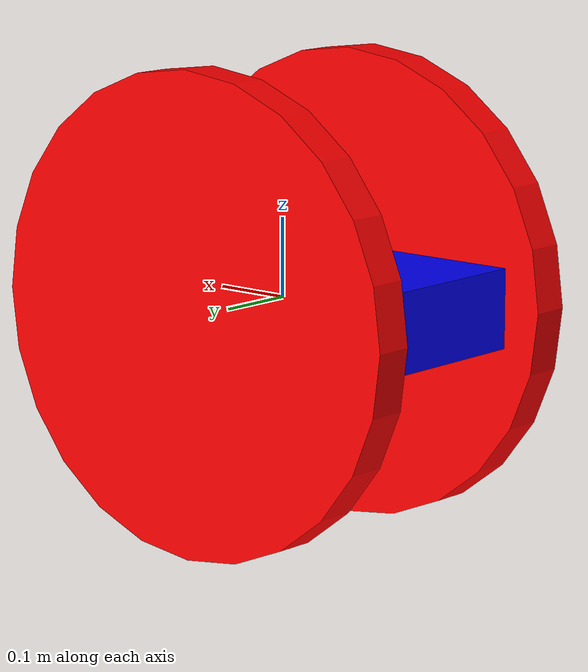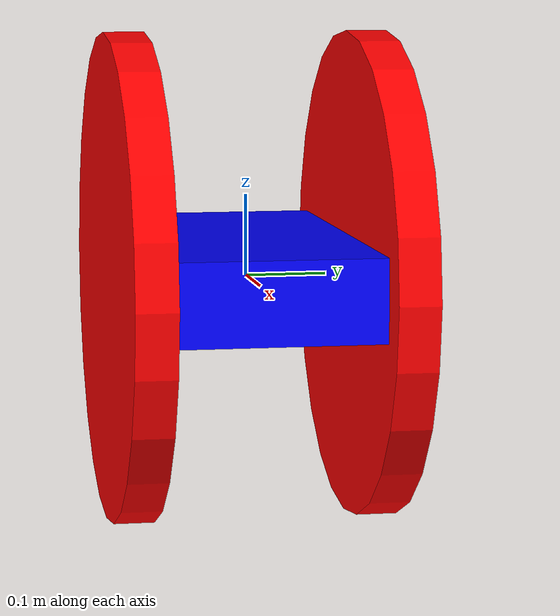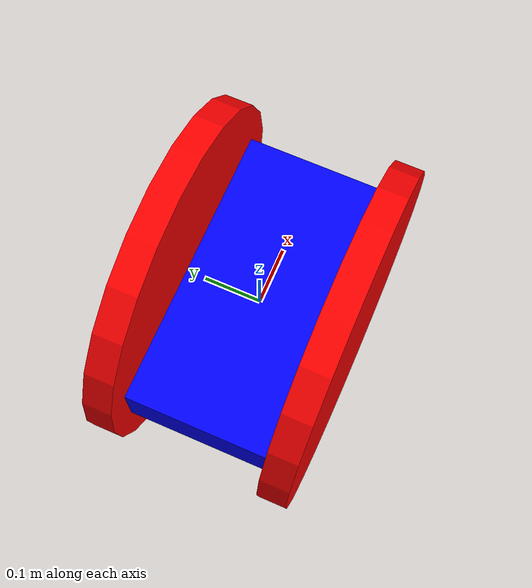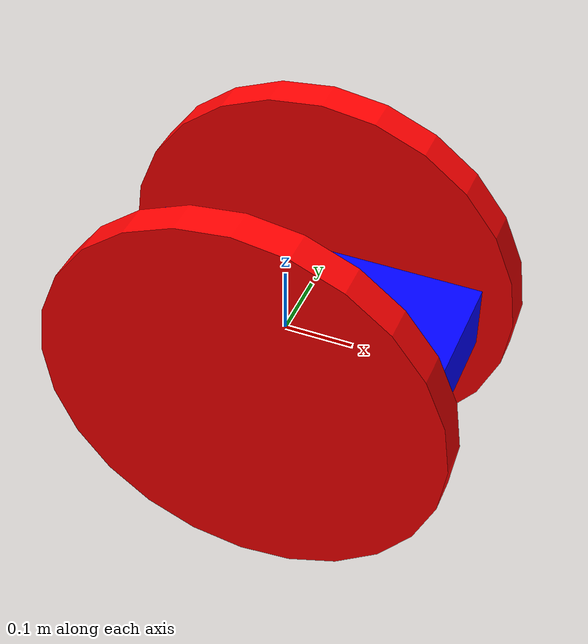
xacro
<?xml version="1.0" encoding="utf-8"?>
<robot xmlns:xacro="http://ros.org/wiki/xacro" name="diff">
    <!-- 定义常量 -->
    <xacro:property name="BASE_LINK_SIZE" value="0.5 0.3 0.1"/>
    <xacro:property name="WHEEL_RADIUS" value="0.3"/>
    <xacro:property name="WHEEL_LENGTH" value="0.05"/>
    <xacro:property name="BASE_LINK_MASS" value="1.0"/>
    <xacro:property name="WHEEL_MASS" value="0.1"/>
    <xacro:property name="WHEEL_POS_Y" value="0.15"/>

    <!-- 定义连杆惯性宏 -->
    <xacro:macro name="link_inertial" params="mass ixx ixy ixz iyy iyz izz">
        <inertial>
            <mass value="${mass}"/>
            <inertia ixx="${ixx}" ixy="${ixy}" ixz="${ixz}" iyy="${iyy}" iyz="${iyz}" izz="${izz}"/>
        </inertial>
    </xacro:macro>

    <!-- 定义方形底盘 -->
    <link name="base_link">
        <visual>
            <geometry>
                <box size="${BASE_LINK_SIZE}"/>
            </geometry>
            <material name="base_link_material">
                <color rgba="0.0 0.0 1.0 1.0"/> <!-- 蓝色车体 -->
            </material>
        </visual>
        <collision>
            <geometry>
                <box size="${BASE_LINK_SIZE}"/>
            </geometry>
        </collision>
        <xacro:link_inertial mass="${BASE_LINK_MASS}" ixx="0.01" ixy="0.0" ixz="0.0" iyy="0.01" iyz="0.0" izz="0.01"/>
    </link>

    <!-- 定义轮子宏 -->
    <xacro:macro name="wheel" params="name side">
        <link name="${name}">
            <visual>
                <geometry>
                    <cylinder radius="${WHEEL_RADIUS}" length="${WHEEL_LENGTH}"/>
                </geometry>
                <material name="${name}_material">
                    <color rgba="1.0 0.0 0.0 1.0"/> <!-- 红色轮子 -->
                </material>
            </visual>
            <collision>
                <geometry>
                    <cylinder radius="${WHEEL_RADIUS}" length="${WHEEL_LENGTH}"/>
                </geometry>
            </collision>
            <xacro:link_inertial mass="${WHEEL_MASS}" ixx="0.001" ixy="0.0" ixz="0.0" iyy="0.001" iyz="0.0" izz="0.001"/>
        </link>
        <joint name="${name}_joint" type="continuous">
            <parent link="base_link"/>
            <child link="${name}"/>
            <origin xyz="0.0 ${side * WHEEL_POS_Y} 0" rpy="1.5708 0 0"/>
            <axis xyz="0 0 1"/>
        </joint>
    </xacro:macro>

    <!-- 定义左驱动轮 -->
    <xacro:wheel name="left_wheel_link" side="1"/>
    <!-- 定义右驱动轮 -->
    <xacro:wheel name="right_wheel_link" side="-1"/>
</robot>
